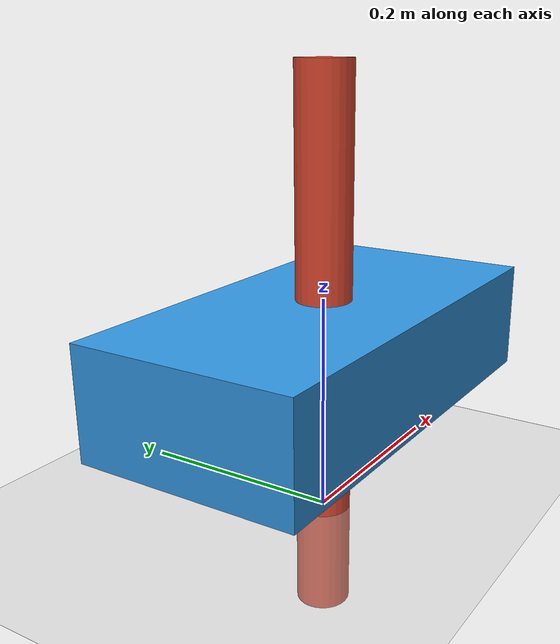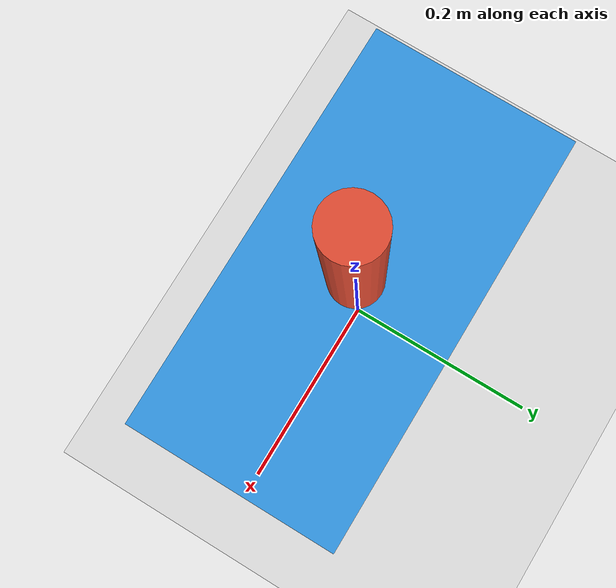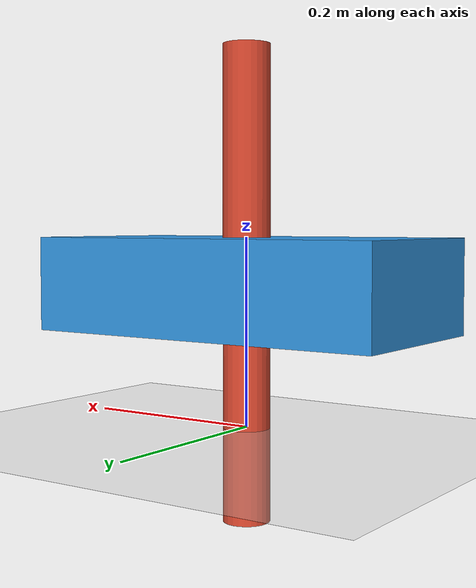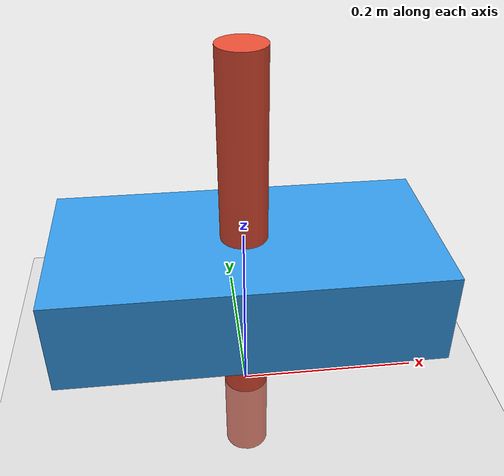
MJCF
<mujoco model="cart_pole">
  <compiler angle="radian"/>
  <option timestep="0.02" gravity="0 0 -9.81"/>

  <default>
    <joint armature="0.1" damping="0.5"/>
    <geom mass="1.0"/>
  </default>

  <worldbody>
    <geom name="floor" type="plane" size="5 5 0.1" rgba="0.8 0.8 0.8 1"/>

    <body name="cart" pos="0 0 0.15">
      <inertial mass="1.0" pos="0 0 0" diaginertia="0.1 0.1 0.1"/>
      <geom type="box" size="0.2 0.1 0.05" rgba="0.2 0.6 0.9 1"/>
      <joint name="slider" type="slide" axis="1 0 0" limited="true" range="-2.0 2.0"/>

      <body name="pole" pos="0 0 0">
        <inertial mass="0.1" pos="0 0 0.25" diaginertia="0.001 0.001 0.0001"/>
        <geom type="cylinder" size="0.025 0.25" rgba="0.9 0.3 0.2 1"/>
        <joint name="hinge" type="hinge" axis="0 1 0" limited="true" range="-1.5708 1.5708"/>
      </body>
    </body>
  </worldbody>

  <actuator>
    <motor name="cart_force" joint="slider" gear="10"/>
  </actuator>

  <sensor>
    <jointpos name="cart_pos" joint="slider"/>
    <jointpos name="pole_angle" joint="hinge"/>
    <jointvel name="cart_vel" joint="slider"/>
    <jointvel name="pole_vel" joint="hinge"/>
  </sensor>
</mujoco>
